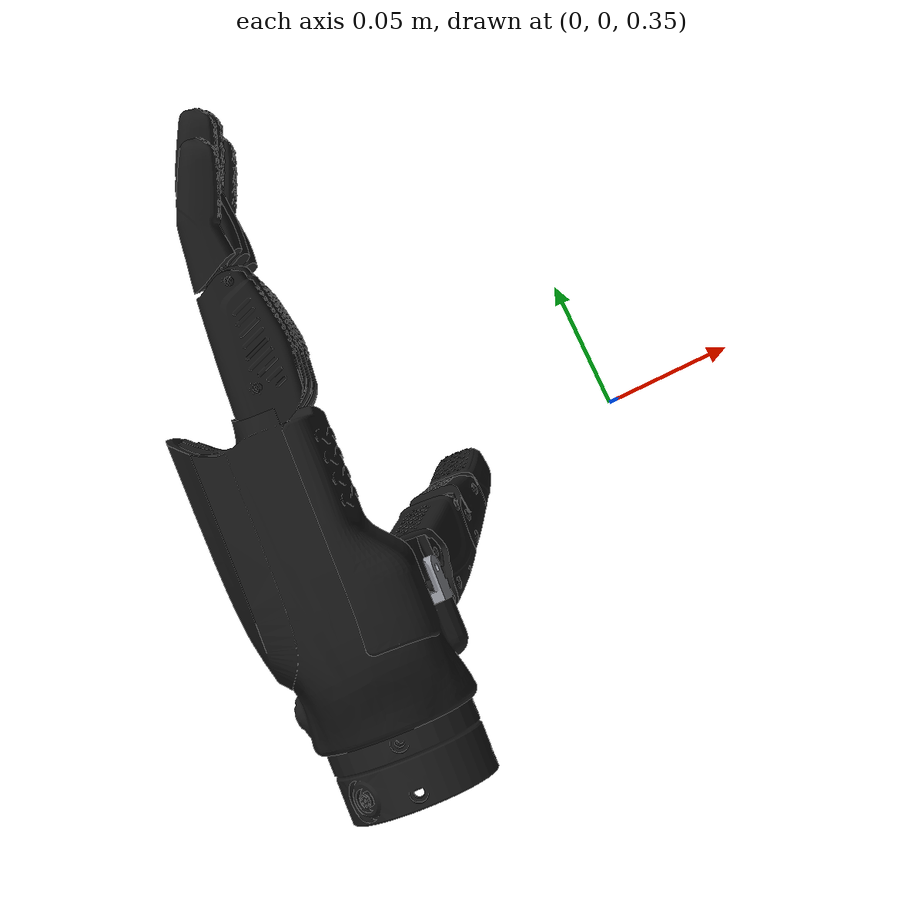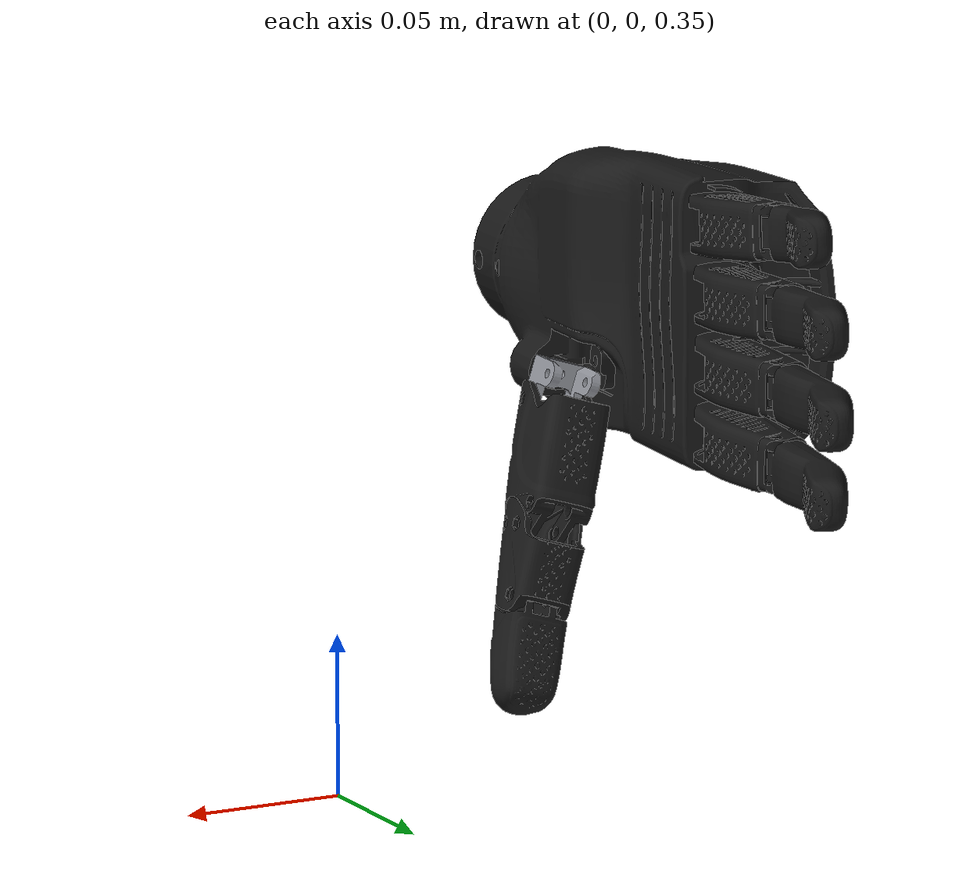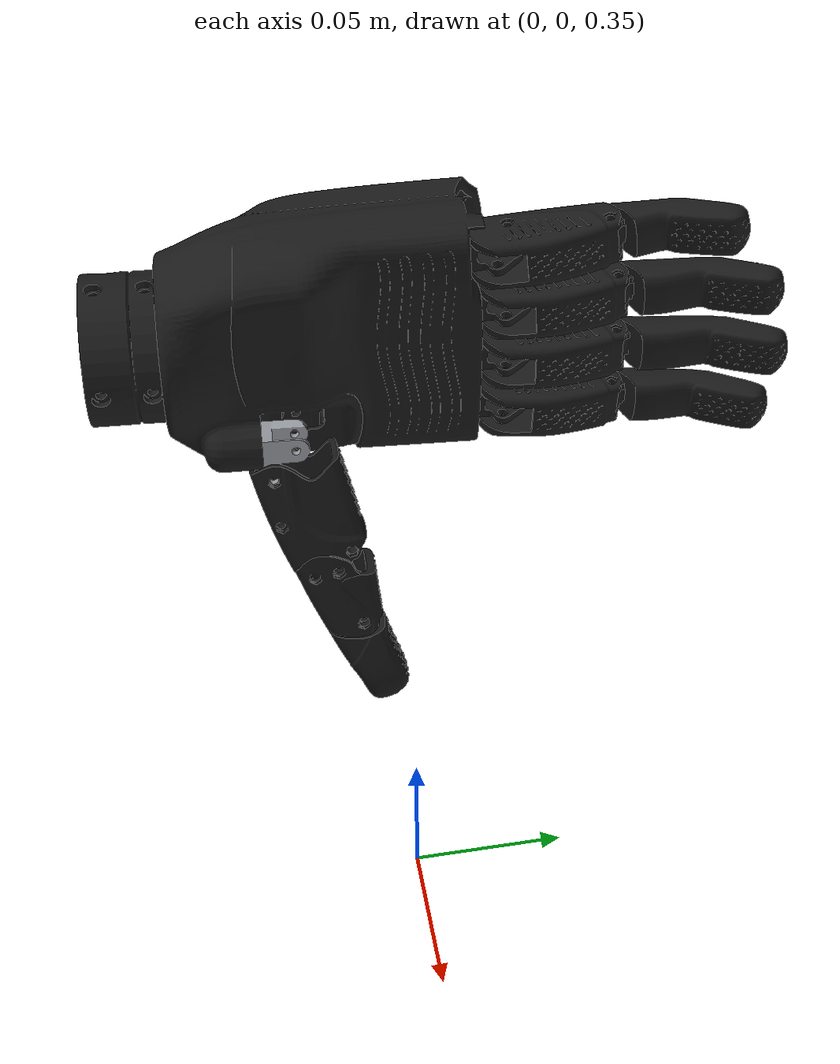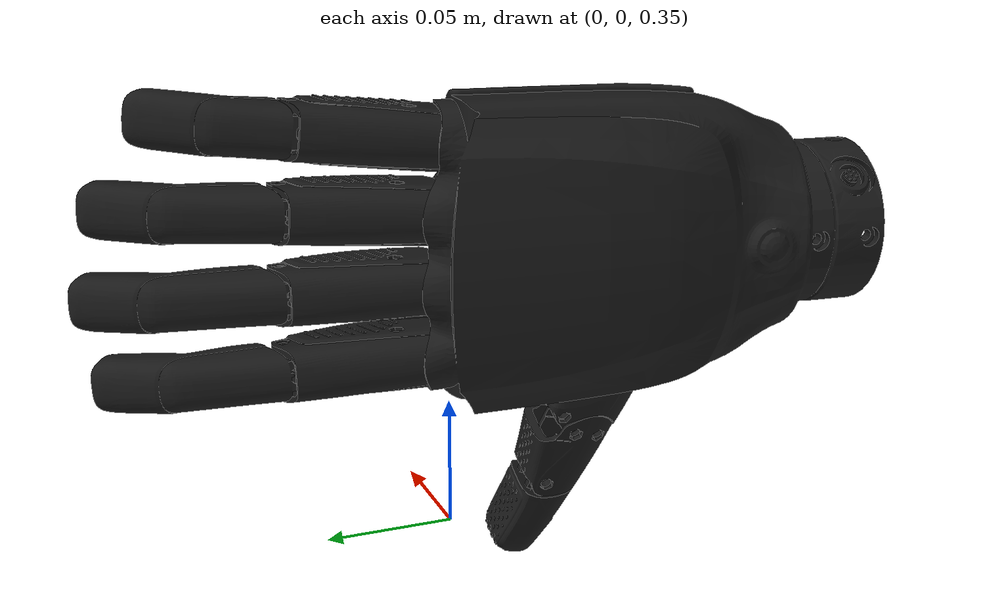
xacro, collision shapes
<?xml version="1.0" encoding="utf-8"?>
<!-- Inspire RH56DFTP right hand — standalone file for isolated visualization.
     Adds a world link and a fixed base joint so RViz can display the hand alone. -->
<robot name="inspire_hand_right" xmlns:xacro="http://www.ros.org/wiki/xacro">

  <xacro:arg name="coupling" default="mimic"/>

  <link name="world"/>

  <joint name="R_hand_base_joint" type="fixed">
    <origin xyz="0 0 0.5" rpy="3.1415926 -1.5707963 1.5"/>
    <parent link="world"/>
    <child link="right_hand_base_link"/>
  </joint>

  <xacro:include filename="$(find h1_2_inspire_description)/urdf/inspire_hand_right.urdf.xacro"/>

</robot>

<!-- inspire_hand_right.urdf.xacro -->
<robot xmlns:xacro="http://www.ros.org/wiki/xacro">

  <!-- coupling:=mimic (default) | software. Unknown values stop xacro with a KeyError. -->
  <xacro:arg name="coupling" default="mimic"/>
  <xacro:property name="hand_coupling_software" value="${dict(mimic=False, software=True)['$(arg coupling)']}"/>
  <xacro:property name="hand_coupling_limits"
                  value="${xacro.load_yaml('$(find h1_2_inspire_description)/config/hand_coupling.yaml')['limits']}"/>

  <link name="right_hand_base_link">
    <inertial>
      <origin xyz="-0.00826856171690858 -0.115495645683634 -0.0283405186091888" rpy="0 0 0"/>
      <mass value="0.696619298523196"/>
      <inertia ixx="0.000599173537715081" ixy="-3.03890781389993E-06" ixz="1.43138854357359E-06"
               iyy="0.000714743287404168" iyz="3.77582394519895E-05" izz="0.000355919460629158"/>
    </inertial>
    <visual>
      <origin xyz="0 0 0" rpy="0 0 0"/>
      <geometry>
        <mesh filename="package://h1_2_inspire_description/meshes/hand_right/visual/right_hand_base_black.STL"/>
      </geometry>
      <material name="inspire_black">
        <color rgba="0.1 0.1 0.1 1"/>
      </material>
    </visual>
    <visual>
      <origin xyz="0 0 0" rpy="0 0 0"/>
      <geometry>
        <mesh filename="package://h1_2_inspire_description/meshes/hand_right/visual/right_hand_base_white.STL"/>
      </geometry>
      <material name="inspire_white">
        <color rgba="0.93 0.93 0.93 1"/>
      </material>
    </visual>
    <visual>
      <origin xyz="0 0 0" rpy="0 0 0"/>
      <geometry>
        <mesh filename="package://h1_2_inspire_description/meshes/hand_right/visual/right_hand_base_silver.STL"/>
      </geometry>
      <material name="inspire_silver">
        <color rgba="0.60 0.61 0.64 1"/>
      </material>
    </visual>
    <collision>
      <origin xyz="0 0 0" rpy="0 0 0"/>
      <geometry>
        <mesh filename="package://h1_2_inspire_description/meshes/hand_right/base_link.STL"/>
      </geometry>
    </collision>
  </link>

  <link name="right_thumb_swing">
    <inertial>
      <origin xyz="-0.001897403655087 7.12516796909923E-05 0.00313589310434412" rpy="0 0 0"/>
      <mass value="0.00115518743162309"/>
      <inertia ixx="6.27834293959477E-08" ixy="-9.38445541803444E-10" ixz="-3.50236810587605E-09"
               iyy="3.78279141131513E-08" iyz="1.31528360070952E-10" izz="6.1816168438865E-08"/>
    </inertial>
    <visual>
      <origin xyz="0 0 0" rpy="0 0 0"/>
      <geometry>
        <mesh filename="package://h1_2_inspire_description/meshes/hand_right/visual/right_thumb_swing_silver.STL"/>
      </geometry>
      <material name="inspire_silver">
        <color rgba="0.60 0.61 0.64 1"/>
      </material>
    </visual>
    <collision>
      <origin xyz="0 0 0" rpy="0 0 0"/>
      <geometry>
        <mesh filename="package://h1_2_inspire_description/meshes/hand_right/right_thumb_swing.STL"/>
      </geometry>
    </collision>
  </link>

  <joint name="right_thumb_swing_joint" type="revolute">
    <origin xyz="-0.035227 -0.0908 -0.040206" rpy="0 0 -0.264255962277"/>
    <parent link="right_hand_base_link"/>
    <child link="right_thumb_swing"/>
    <axis xyz="0 0 -1"/>
    <limit lower="${hand_coupling_limits['thumb_swing'][0] if hand_coupling_software else 0}"
           upper="${hand_coupling_limits['thumb_swing'][1] if hand_coupling_software else 1.2}" effort="1" velocity="100"/>
  </joint>

  <link name="right_thumb_1">
    <inertial>
      <origin xyz="-0.0163208309809786 -0.00996672794459635 -0.00940273641037634" rpy="0 0 0"/>
      <mass value="0.035"/>
      <inertia ixx="1.05252775356938E-06" ixy="-8.8013589531825E-08" ixz="4.12297543062756E-10"
               iyy="1.12456993863274E-06" iyz="3.58528262599009E-10" izz="1.43633392322177E-06"/>
    </inertial>
    <visual>
      <origin xyz="0 0 0" rpy="0 0 0"/>
      <geometry>
        <mesh filename="package://h1_2_inspire_description/meshes/hand_right/visual/right_thumb_1_black.STL"/>
      </geometry>
      <material name="inspire_black">
        <color rgba="0.1 0.1 0.1 1"/>
      </material>
    </visual>
    <visual>
      <origin xyz="0 0 0" rpy="0 0 0"/>
      <geometry>
        <mesh filename="package://h1_2_inspire_description/meshes/hand_right/visual/right_thumb_1_white.STL"/>
      </geometry>
      <material name="inspire_white">
        <color rgba="0.93 0.93 0.93 1"/>
      </material>
    </visual>
    <visual>
      <origin xyz="0 0 0" rpy="0 0 0"/>
      <geometry>
        <mesh filename="package://h1_2_inspire_description/meshes/hand_right/visual/right_thumb_1_silver.STL"/>
      </geometry>
      <material name="inspire_silver">
        <color rgba="0.60 0.61 0.64 1"/>
      </material>
    </visual>
    <collision>
      <origin xyz="0 0 0" rpy="0 0 0"/>
      <geometry>
        <mesh filename="package://h1_2_inspire_description/meshes/hand_right/right_thumb_1.STL"/>
      </geometry>
    </collision>
  </link>

  <joint name="right_thumb_1_joint" type="revolute">
    <origin xyz="-0.0096402 0.0097687 0.00125" rpy="-1.57080004631 0.157966055165 -0.0375365851163"/>
    <parent link="right_thumb_swing"/>
    <child link="right_thumb_1"/>
    <axis xyz="0 0 1"/>
    <limit lower="${hand_coupling_limits['thumb_1'][0] if hand_coupling_software else 0}"
           upper="${hand_coupling_limits['thumb_1'][1] if hand_coupling_software else 0.624}" effort="1" velocity="100"/>
  </joint>

  <link name="right_thumb_2">
    <inertial>
      <origin xyz="-0.0100669921030146 -0.0027226860312175 -0.00854141424002414" rpy="0 0 0"/>
      <mass value="0.023"/>
      <inertia ixx="4.61650984659959E-07" ixy="-6.02617854200335E-08" ixz="4.49999330286846E-11"
               iyy="4.2100553287784E-07" iyz="2.1886405983307E-10" izz="4.38695633575155E-07"/>
    </inertial>
    <visual>
      <origin xyz="0 0 0" rpy="0 0 0"/>
      <geometry>
        <mesh filename="package://h1_2_inspire_description/meshes/hand_right/visual/right_thumb_2_black.STL"/>
      </geometry>
      <material name="inspire_black">
        <color rgba="0.1 0.1 0.1 1"/>
      </material>
    </visual>
    <visual>
      <origin xyz="0 0 0" rpy="0 0 0"/>
      <geometry>
        <mesh filename="package://h1_2_inspire_description/meshes/hand_right/visual/right_thumb_2_white.STL"/>
      </geometry>
      <material name="inspire_white">
        <color rgba="0.93 0.93 0.93 1"/>
      </material>
    </visual>
    <collision>
      <origin xyz="0 0 0" rpy="0 0 0"/>
      <geometry>
        <mesh filename="package://h1_2_inspire_description/meshes/hand_right/right_thumb_2.STL"/>
      </geometry>
    </collision>
  </link>

  <joint name="right_thumb_2_joint" type="revolute">
    <origin xyz="-0.0385855343215257 -0.0137354280979689 -0.00085000000007604" rpy="0 0 -0.194493577934"/>
    <parent link="right_thumb_1"/>
    <child link="right_thumb_2"/>
    <axis xyz="0 0 1"/>
    <limit lower="${hand_coupling_limits['thumb_2'][0] if hand_coupling_software else 0}"
           upper="${hand_coupling_limits['thumb_2'][1] if hand_coupling_software else 0.375024}" effort="1" velocity="100"/>
    <xacro:unless value="${hand_coupling_software}">
      <mimic joint="right_thumb_1_joint" multiplier="0.601" offset="0"/>
    </xacro:unless>
  </joint>

  <link name="right_thumb_3">
    <inertial>
      <origin xyz="-0.0166252667929019 -0.00439732092491903 -0.00874331047569411" rpy="0 0 0"/>
      <mass value="0.018"/>
      <inertia ixx="5.85505830748828E-07" ixy="-2.36405978862981E-07" ixz="-9.42185151685949E-10"
               iyy="8.21798877779441E-07" iyz="-6.15791569450789E-10" izz="9.25701229462772E-07"/>
    </inertial>
    <visual>
      <origin xyz="0 0 0" rpy="0 0 0"/>
      <geometry>
        <mesh filename="package://h1_2_inspire_description/meshes/hand_right/visual/right_thumb_3_black.STL"/>
      </geometry>
      <material name="inspire_black">
        <color rgba="0.1 0.1 0.1 1"/>
      </material>
    </visual>
    <visual>
      <origin xyz="0 0 0" rpy="0 0 0"/>
      <geometry>
        <mesh filename="package://h1_2_inspire_description/meshes/hand_right/visual/right_thumb_3_white.STL"/>
      </geometry>
      <material name="inspire_white">
        <color rgba="0.93 0.93 0.93 1"/>
      </material>
    </visual>
    <visual>
      <origin xyz="0 0 0" rpy="0 0 0"/>
      <geometry>
        <mesh filename="package://h1_2_inspire_description/meshes/hand_right/visual/right_thumb_3_silver.STL"/>
      </geometry>
      <material name="inspire_silver">
        <color rgba="0.60 0.61 0.64 1"/>
      </material>
    </visual>
    <collision>
      <origin xyz="0 0 0" rpy="0 0 0"/>
      <geometry>
        <mesh filename="package://h1_2_inspire_description/meshes/hand_right/right_thumb_3.STL"/>
      </geometry>
    </collision>
  </link>

  <joint name="right_thumb_3_joint" type="revolute">
    <origin xyz="-0.0204656980659991 -0.00837680232935447 0.000199999999999881" rpy="0 0 -0.0674403669002"/>
    <parent link="right_thumb_2"/>
    <child link="right_thumb_3"/>
    <axis xyz="0 0 1"/>
    <limit lower="${hand_coupling_limits['thumb_3'][0] if hand_coupling_software else 0}"
           upper="${hand_coupling_limits['thumb_3'][1] if hand_coupling_software else 0.361296}" effort="1" velocity="100"/>
    <xacro:unless value="${hand_coupling_software}">
      <mimic joint="right_thumb_1_joint" multiplier="0.579" offset="0"/>
    </xacro:unless>
  </joint>

  <link name="right_index_1">
    <inertial>
      <origin xyz="0.00219916454162671 -0.0122949545354551 -0.00779931609805271" rpy="0 0 0"/>
      <mass value="0.00719950629120704"/>
      <inertia ixx="1.28051762409609E-06" ixy="6.28742259934098E-08" ixz="8.85831478756991E-13"
               iyy="5.82545787352841E-07" iyz="-8.55749735433038E-11" izz="1.32913319060816E-06"/>
    </inertial>
    <visual>
      <origin xyz="0 0 0" rpy="0 0 0"/>
      <geometry>
        <mesh filename="package://h1_2_inspire_description/meshes/hand_right/visual/right_index_1_black.STL"/>
      </geometry>
      <material name="inspire_black">
        <color rgba="0.1 0.1 0.1 1"/>
      </material>
    </visual>
    <visual>
      <origin xyz="0 0 0" rpy="0 0 0"/>
      <geometry>
        <mesh filename="package://h1_2_inspire_description/meshes/hand_right/visual/right_index_1_white.STL"/>
      </geometry>
      <material name="inspire_white">
        <color rgba="0.93 0.93 0.93 1"/>
      </material>
    </visual>
    <collision>
      <origin xyz="0 0 0" rpy="0 0 0"/>
      <geometry>
        <mesh filename="package://h1_2_inspire_description/meshes/hand_right/right_index_1.STL"/>
      </geometry>
    </collision>
  </link>

  <joint name="right_index_1_joint" type="revolute">
    <origin xyz="-0.048156 -0.11125 0.045404" rpy="-1.60572019555 0.0340027756015 1.56961223797"/>
    <parent link="right_hand_base_link"/>
    <child link="right_index_1"/>
    <axis xyz="0 0 1"/>
    <limit lower="${hand_coupling_limits['index_1'][0] if hand_coupling_software else 0}"
           upper="${hand_coupling_limits['index_1'][1] if hand_coupling_software else 1.517}" effort="1" velocity="100"/>
  </joint>

  <link name="right_index_2">
    <inertial>
      <origin xyz="-0.000690175178177488 -0.0256943199737118 -0.0074925254099278" rpy="0 0 0"/>
      <mass value="0.00968687528768598"/>
      <inertia ixx="2.26451337650877E-06" ixy="3.90524448356852E-07" ixz="3.56545732231415E-10"
               iyy="3.82394128669363E-07" iyz="-2.76896757225301E-09" izz="2.302471439937E-06"/>
    </inertial>
    <visual>
      <origin xyz="0 0 0" rpy="0 0 0"/>
      <geometry>
        <mesh filename="package://h1_2_inspire_description/meshes/hand_right/visual/right_index_2_black.STL"/>
      </geometry>
      <material name="inspire_black">
        <color rgba="0.1 0.1 0.1 1"/>
      </material>
    </visual>
    <visual>
      <origin xyz="0 0 0" rpy="0 0 0"/>
      <geometry>
        <mesh filename="package://h1_2_inspire_description/meshes/hand_right/visual/right_index_2_white.STL"/>
      </geometry>
      <material name="inspire_white">
        <color rgba="0.93 0.93 0.93 1"/>
      </material>
    </visual>
    <visual>
      <origin xyz="0 0 0" rpy="0 0 0"/>
      <geometry>
        <mesh filename="package://h1_2_inspire_description/meshes/hand_right/visual/right_index_2_silver.STL"/>
      </geometry>
      <material name="inspire_silver">
        <color rgba="0.60 0.61 0.64 1"/>
      </material>
    </visual>
    <collision>
      <origin xyz="0 0 0" rpy="0 0 0"/>
      <geometry>
        <mesh filename="package://h1_2_inspire_description/meshes/hand_right/right_index_2.STL"/>
      </geometry>
    </collision>
  </link>

  <joint name="right_index_2_joint" type="revolute">
    <origin xyz="0.00259487212105013 -0.0326721877470773 -0.000299999999999988" rpy="0 0 -0.0134303183457"/>
    <parent link="right_index_1"/>
    <child link="right_index_2"/>
    <axis xyz="0 0 1"/>
    <limit lower="${hand_coupling_limits['index_2'][0] if hand_coupling_software else 0}"
           upper="${hand_coupling_limits['index_2'][1] if hand_coupling_software else 1.35013}" effort="1" velocity="100"/>
    <xacro:unless value="${hand_coupling_software}">
      <mimic joint="right_index_1_joint" multiplier="0.890" offset="0"/>
    </xacro:unless>
  </joint>

  <link name="right_middle_1">
    <inertial>
      <origin xyz="0.00229271394242234 -0.0122778605414752 -0.00779931823074317" rpy="0 0 0"/>
      <mass value="0.00719950322487975"/>
      <inertia ixx="1.27951858905778E-06" ixy="6.81813021711601E-08" ixz="1.5855112157922E-12"
               iyy="5.83543537428456E-07" iyz="-8.56179612609339E-11" izz="1.32913234511164E-06"/>
    </inertial>
    <visual>
      <origin xyz="0 0 0" rpy="0 0 0"/>
      <geometry>
        <mesh filename="package://h1_2_inspire_description/meshes/hand_right/visual/right_middle_1_black.STL"/>
      </geometry>
      <material name="inspire_black">
        <color rgba="0.1 0.1 0.1 1"/>
      </material>
    </visual>
    <visual>
      <origin xyz="0 0 0" rpy="0 0 0"/>
      <geometry>
        <mesh filename="package://h1_2_inspire_description/meshes/hand_right/visual/right_middle_1_white.STL"/>
      </geometry>
      <material name="inspire_white">
        <color rgba="0.93 0.93 0.93 1"/>
      </material>
    </visual>
    <collision>
      <origin xyz="0 0 0" rpy="0 0 0"/>
      <geometry>
        <mesh filename="package://h1_2_inspire_description/meshes/hand_right/right_middle_1.STL"/>
      </geometry>
    </collision>
  </link>

  <joint name="right_middle_1_joint" type="revolute">
    <origin xyz="-0.026577 -0.11125 0.046044" rpy="-1.57080000132 0.0268525042197 1.57079990134"/>
    <parent link="right_hand_base_link"/>
    <child link="right_middle_1"/>
    <axis xyz="0 0 1"/>
    <limit lower="${hand_coupling_limits['middle_1'][0] if hand_coupling_software else 0}"
           upper="${hand_coupling_limits['middle_1'][1] if hand_coupling_software else 1.517}" effort="1" velocity="100"/>
  </joint>

  <link name="right_middle_2">
    <inertial>
      <origin xyz="-7.51983994427274E-05 -0.027448753770842 -0.00750059894166984" rpy="0 0 0"/>
      <mass value="0.0104611931926301"/>
      <inertia ixx="2.75831931773332E-06" ixy="4.66412841401028E-07" ixz="7.3576656177484E-12"
               iyy="4.22466538741155E-07" iyz="-1.79608426686722E-11" izz="2.80722617348706E-06"/>
    </inertial>
    <visual>
      <origin xyz="0 0 0" rpy="0 0 0"/>
      <geometry>
        <mesh filename="package://h1_2_inspire_description/meshes/hand_right/visual/right_middle_2_black.STL"/>
      </geometry>
      <material name="inspire_black">
        <color rgba="0.1 0.1 0.1 1"/>
      </material>
    </visual>
    <visual>
      <origin xyz="0 0 0" rpy="0 0 0"/>
      <geometry>
        <mesh filename="package://h1_2_inspire_description/meshes/hand_right/visual/right_middle_2_white.STL"/>
      </geometry>
      <material name="inspire_white">
        <color rgba="0.93 0.93 0.93 1"/>
      </material>
    </visual>
    <visual>
      <origin xyz="0 0 0" rpy="0 0 0"/>
      <geometry>
        <mesh filename="package://h1_2_inspire_description/meshes/hand_right/visual/right_middle_2_silver.STL"/>
      </geometry>
      <material name="inspire_silver">
        <color rgba="0.60 0.61 0.64 1"/>
      </material>
    </visual>
    <collision>
      <origin xyz="0 0 0" rpy="0 0 0"/>
      <geometry>
        <mesh filename="package://h1_2_inspire_description/meshes/hand_right/right_middle_2.STL"/>
      </geometry>
    </collision>
  </link>

  <joint name="right_middle_2_joint" type="revolute">
    <origin xyz="0.0028436 -0.032651 -0.0003" rpy="0 0 -0.0209598705691"/>
    <parent link="right_middle_1"/>
    <child link="right_middle_2"/>
    <axis xyz="0 0 1"/>
    <limit lower="${hand_coupling_limits['middle_2'][0] if hand_coupling_software else 0}"
           upper="${hand_coupling_limits['middle_2'][1] if hand_coupling_software else 1.35013}" effort="1" velocity="100"/>
    <xacro:unless value="${hand_coupling_software}">
      <mimic joint="right_middle_1_joint" multiplier="0.890" offset="0"/>
    </xacro:unless>
  </joint>

  <link name="right_ring_1">
    <inertial>
      <origin xyz="0.00240530428455067 -0.0122563079467745 -0.00779931923444504" rpy="0 0 0"/>
      <mass value="0.00719949770218713"/>
      <inertia ixx="1.27820682409824E-06" ixy="7.45572429780095E-08" ixz="2.25718181777012E-12"
               iyy="5.84853511073516E-07" iyz="-8.5622233041164E-11" izz="1.32913088941838E-06"/>
    </inertial>
    <visual>
      <origin xyz="0 0 0" rpy="0 0 0"/>
      <geometry>
        <mesh filename="package://h1_2_inspire_description/meshes/hand_right/visual/right_ring_1_black.STL"/>
      </geometry>
      <material name="inspire_black">
        <color rgba="0.1 0.1 0.1 1"/>
      </material>
    </visual>
    <visual>
      <origin xyz="0 0 0" rpy="0 0 0"/>
      <geometry>
        <mesh filename="package://h1_2_inspire_description/meshes/hand_right/visual/right_ring_1_white.STL"/>
      </geometry>
      <material name="inspire_white">
        <color rgba="0.93 0.93 0.93 1"/>
      </material>
    </visual>
    <collision>
      <origin xyz="0 0 0" rpy="0 0 0"/>
      <geometry>
        <mesh filename="package://h1_2_inspire_description/meshes/hand_right/right_ring_1.STL"/>
      </geometry>
    </collision>
  </link>

  <joint name="right_ring_1_joint" type="revolute">
    <origin xyz="-0.004945 -0.11125 0.045939" rpy="-1.51837669915 0.0298037635211 1.57236350197"/>
    <parent link="right_hand_base_link"/>
    <child link="right_ring_1"/>
    <axis xyz="0 0 1"/>
    <limit lower="${hand_coupling_limits['ring_1'][0] if hand_coupling_software else 0}"
           upper="${hand_coupling_limits['ring_1'][1] if hand_coupling_software else 1.517}" effort="1" velocity="100"/>
  </joint>

  <link name="right_ring_2">
    <inertial>
      <origin xyz="-0.000667145407605998 -0.0256949163202511 -0.00749252997688842" rpy="0 0 0"/>
      <mass value="0.00968685177133057"/>
      <inertia ixx="2.26381138740299E-06" ixy="3.92210300202205E-07" ixz="3.58404653503586E-10"
               iyy="3.83095000534084E-07" iyz="-2.77027363965472E-09" izz="2.30247104599333E-06"/>
    </inertial>
    <visual>
      <origin xyz="0 0 0" rpy="0 0 0"/>
      <geometry>
        <mesh filename="package://h1_2_inspire_description/meshes/hand_right/visual/right_ring_2_black.STL"/>
      </geometry>
      <material name="inspire_black">
        <color rgba="0.1 0.1 0.1 1"/>
      </material>
    </visual>
    <visual>
      <origin xyz="0 0 0" rpy="0 0 0"/>
      <geometry>
        <mesh filename="package://h1_2_inspire_description/meshes/hand_right/visual/right_ring_2_white.STL"/>
      </geometry>
      <material name="inspire_white">
        <color rgba="0.93 0.93 0.93 1"/>
      </material>
    </visual>
    <visual>
      <origin xyz="0 0 0" rpy="0 0 0"/>
      <geometry>
        <mesh filename="package://h1_2_inspire_description/meshes/hand_right/visual/right_ring_2_silver.STL"/>
      </geometry>
      <material name="inspire_silver">
        <color rgba="0.60 0.61 0.64 1"/>
      </material>
    </visual>
    <collision>
      <origin xyz="0 0 0" rpy="0 0 0"/>
      <geometry>
        <mesh filename="package://h1_2_inspire_description/meshes/hand_right/right_ring_2.STL"/>
      </geometry>
    </collision>
  </link>

  <joint name="right_ring_2_joint" type="revolute">
    <origin xyz="0.0031431 -0.032624 -0.0003" rpy="0 0 -0.0178180295277"/>
    <parent link="right_ring_1"/>
    <child link="right_ring_2"/>
    <axis xyz="0 0 1"/>
    <limit lower="${hand_coupling_limits['ring_2'][0] if hand_coupling_software else 0}"
           upper="${hand_coupling_limits['ring_2'][1] if hand_coupling_software else 1.35013}" effort="1" velocity="100"/>
    <xacro:unless value="${hand_coupling_software}">
      <mimic joint="right_ring_1_joint" multiplier="0.890" offset="0"/>
    </xacro:unless>
  </joint>

  <link name="right_little_1">
    <inertial>
      <origin xyz="0.0020908902145567 -0.0123138388094518 -0.00779930416612102" rpy="0 0 0"/>
      <mass value="0.00719949424831882"/>
      <inertia ixx="1.28158473132988E-06" ixy="5.67213995105241E-08" ixz="3.81932384005559E-13"
               iyy="5.81492545898195E-07" iyz="-8.62730752553906E-11" izz="1.32914698853052E-06"/>
    </inertial>
    <visual>
      <origin xyz="0 0 0" rpy="0 0 0"/>
      <geometry>
        <mesh filename="package://h1_2_inspire_description/meshes/hand_right/visual/right_little_1_black.STL"/>
      </geometry>
      <material name="inspire_black">
        <color rgba="0.1 0.1 0.1 1"/>
      </material>
    </visual>
    <visual>
      <origin xyz="0 0 0" rpy="0 0 0"/>
      <geometry>
        <mesh filename="package://h1_2_inspire_description/meshes/hand_right/visual/right_little_1_white.STL"/>
      </geometry>
      <material name="inspire_white">
        <color rgba="0.93 0.93 0.93 1"/>
      </material>
    </visual>
    <collision>
      <origin xyz="0 0 0" rpy="0 0 0"/>
      <geometry>
        <mesh filename="package://h1_2_inspire_description/meshes/hand_right/right_little_1.STL"/>
      </geometry>
    </collision>
  </link>

  <joint name="right_little_1_joint" type="revolute">
    <origin xyz="0.016446 -0.11125 0.042817" rpy="-1.46597260093 0.0492171254337 1.57597596558"/>
    <parent link="right_hand_base_link"/>
    <child link="right_little_1"/>
    <axis xyz="0 0 1"/>
    <limit lower="${hand_coupling_limits['little_1'][0] if hand_coupling_software else 0}"
           upper="${hand_coupling_limits['little_1'][1] if hand_coupling_software else 1.517}" effort="1" velocity="100"/>
  </joint>

  <link name="right_little_2">
    <inertial>
      <origin xyz="-0.0017604035921492 -0.0209002097557272 -0.00750031127302827" rpy="0 0 0"/>
      <mass value="0.00759259232694104"/>
      <inertia ixx="1.2354235368985E-06" ixy="2.15945048600066E-07" ixz="3.12205526892557E-12"
               iyy="2.72718801980276E-07" iyz="-1.27574096139233E-11" izz="1.23906813966421E-06"/>
    </inertial>
    <visual>
      <origin xyz="0 0 0" rpy="0 0 0"/>
      <geometry>
        <mesh filename="package://h1_2_inspire_description/meshes/hand_right/visual/right_little_2_black.STL"/>
      </geometry>
      <material name="inspire_black">
        <color rgba="0.1 0.1 0.1 1"/>
      </material>
    </visual>
    <visual>
      <origin xyz="0 0 0" rpy="0 0 0"/>
      <geometry>
        <mesh filename="package://h1_2_inspire_description/meshes/hand_right/visual/right_little_2_white.STL"/>
      </geometry>
      <material name="inspire_white">
        <color rgba="0.93 0.93 0.93 1"/>
      </material>
    </visual>
    <visual>
      <origin xyz="0 0 0" rpy="0 0 0"/>
      <geometry>
        <mesh filename="package://h1_2_inspire_description/meshes/hand_right/visual/right_little_2_silver.STL"/>
      </geometry>
      <material name="inspire_silver">
        <color rgba="0.60 0.61 0.64 1"/>
      </material>
    </visual>
    <collision>
      <origin xyz="0 0 0" rpy="0 0 0"/>
      <geometry>
        <mesh filename="package://h1_2_inspire_description/meshes/hand_right/right_little_2.STL"/>
      </geometry>
    </collision>
  </link>

  <joint name="right_little_2_joint" type="revolute">
    <origin xyz="0.0023072 -0.032694 -0.0003" rpy="0 0 0.00280774240557"/>
    <parent link="right_little_1"/>
    <child link="right_little_2"/>
    <axis xyz="0 0 1"/>
    <limit lower="${hand_coupling_limits['little_2'][0] if hand_coupling_software else 0}"
           upper="${hand_coupling_limits['little_2'][1] if hand_coupling_software else 1.35013}" effort="1" velocity="100"/>
    <xacro:unless value="${hand_coupling_software}">
      <mimic joint="right_little_1_joint" multiplier="0.890" offset="0"/>
    </xacro:unless>
  </joint>

</robot>
